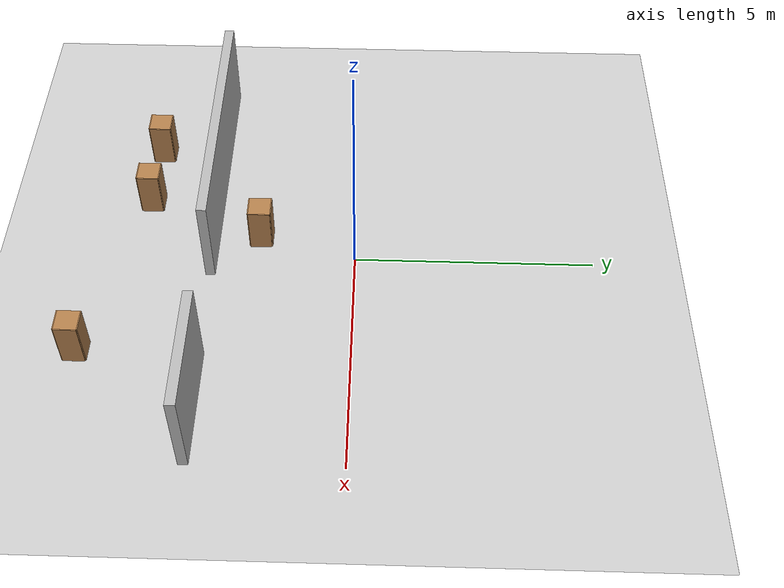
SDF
<sdf version="1.6">
 <world name="default">
  <model name="ground_plane">
   <static>1</static>
   <link name="link">
    <collision name="collision">
     <geometry><plane><normal>0 0 1</normal><size>100 100</size></plane></geometry>
     <surface><friction><ode><mu>100</mu><mu2>50</mu2></ode></friction></surface>
    </collision>
    <visual name="visual">
     <cast_shadows>0</cast_shadows>
     <geometry><plane><normal>0 0 1</normal><size>100 100</size></plane></geometry>
     <material>
      <script><uri>file://media/materials/scripts/gazebo.material</uri><name>Gazebo/Grey</name></script>
     </material>
    </visual>
    <velocity_decay><linear>0</linear><angular>0</angular></velocity_decay>
   </link>
  </model>
  <model name="wall_5_model">
   <pose>-2.25 -3 1 0 -0 0</pose>
   <static>1</static>
   <link name="wall_5_body">
    <inertial>
     <mass>1</mass>
     <inertia><ixx>1</ixx><ixy>0</ixy><ixz>0</ixz><iyy>1</iyy><iyz>0</iyz><izz>1</izz></inertia>
    </inertial>
    <collision name="collision"><geometry><box><size>5.5 0.2 2</size></box></geometry></collision>
    <visual name="visual"><geometry><box><size>5.5 0.2 2</size></box></geometry></visual>
    <velocity_decay><linear>0</linear><angular>0</angular></velocity_decay>
   </link>
  </model>
  <model name="wall_6_model">
   <pose>3.75 -3 1 0 -0 0</pose>
   <static>1</static>
   <link name="wall_6_body">
    <inertial>
     <mass>1</mass>
     <inertia><ixx>1</ixx><ixy>0</ixy><ixz>0</ixz><iyy>1</iyy><iyz>0</iyz><izz>1</izz></inertia>
    </inertial>
    <collision name="collision"><geometry><box><size>2.5 0.2 2</size></box></geometry></collision>
    <visual name="visual"><geometry><box><size>2.5 0.2 2</size></box></geometry></visual>
    <velocity_decay><linear>0</linear><angular>0</angular></velocity_decay>
   </link>
  </model>
  <model name="cabinet_0">
   <static>1</static>
   <link name="cabinet_bottom_plate">
    <inertial>
     <pose>0 0 -1 0 -0 0</pose>
     <inertia><ixx>2.05</ixx><ixy>0</ixy><ixz>0</ixz><iyy>2.05</iyy><iyz>0</iyz><izz>2.05</izz></inertia>
     <mass>25</mass>
    </inertial>
    <collision name="cabinet_bottom_plate_geom">
     <pose>0 0 0.01 0 -0 0</pose>
     <geometry><box><size>0.45 0.45 0.02</size></box></geometry>
    </collision>
    <visual name="cabinet_bottom_plate_geom_visual">
     <pose>0 0 0.01 0 -0 0</pose>
     <geometry><box><size>0.45 0.45 0.02</size></box></geometry>
     <material>
      <script><uri>file://media/materials/scripts/gazebo.material</uri><name>Gazebo/Wood</name></script>
     </material>
    </visual>
    <collision name="cabinet_bottom_plate_geom_cabinet_back_plate">
     <pose>0.235 0 0.51 0 -0 0</pose>
     <geometry><box><size>0.02 0.45 1.02</size></box></geometry>
    </collision>
    <visual name="cabinet_bottom_plate_geom_cabinet_back_plate_visual">
     <pose>0.235 0 0.51 0 -0 0</pose>
     <geometry><box><size>0.02 0.45 1.02</size></box></geometry>
     <material>
      <script><uri>file://media/materials/scripts/gazebo.material</uri><name>Gazebo/Wood</name></script>
     </material>
    </visual>
    <collision name="cabinet_bottom_plate_geom_cabinet_left_plate">
     <pose>0 0.235 0.51 0 -0 0</pose>
     <geometry><box><size>0.45 0.02 1.02</size></box></geometry>
    </collision>
    <visual name="cabinet_bottom_plate_geom_cabinet_left_plate_visual">
     <pose>0 0.235 0.51 0 -0 0</pose>
     <geometry><box><size>0.45 0.02 1.02</size></box></geometry>
     <material>
      <script><uri>file://media/materials/scripts/gazebo.material</uri><name>Gazebo/Wood</name></script>
     </material>
    </visual>
    <collision name="cabinet_bottom_plate_geom_cabinet_middle_plate">
     <pose>0 0 0.51 0 -0 0</pose>
     <geometry><box><size>0.45 0.45 0.02</size></box></geometry>
    </collision>
    <visual name="cabinet_bottom_plate_geom_cabinet_middle_plate_visual">
     <pose>0 0 0.51 0 -0 0</pose>
     <geometry><box><size>0.45 0.45 0.02</size></box></geometry>
     <material>
      <script><uri>file://media/materials/scripts/gazebo.material</uri><name>Gazebo/Wood</name></script>
     </material>
    </visual>
    <collision name="cabinet_bottom_plate_geom_cabinet_right_plate">
     <pose>0 -0.235 0.51 0 -0 0</pose>
     <geometry><box><size>0.45 0.02 1.02</size></box></geometry>
    </collision>
    <visual name="cabinet_bottom_plate_geom_cabinet_right_plate_visual">
     <pose>0 -0.235 0.51 0 -0 0</pose>
     <geometry><box><size>0.45 0.02 1.02</size></box></geometry>
     <material>
      <script><uri>file://media/materials/scripts/gazebo.material</uri><name>Gazebo/Wood</name></script>
     </material>
    </visual>
    <collision name="cabinet_bottom_plate_geom_cabinet_top_plate">
     <pose>0 0 1.01 0 -0 0</pose>
     <geometry><box><size>0.45 0.45 0.02</size></box></geometry>
    </collision>
    <visual name="cabinet_bottom_plate_geom_cabinet_top_plate_visual">
     <pose>0 0 1.01 0 -0 0</pose>
     <geometry><box><size>0.45 0.45 0.02</size></box></geometry>
     <material>
      <script><uri>file://media/materials/scripts/gazebo.material</uri><name>Gazebo/Wood</name></script>
     </material>
    </visual>
    <velocity_decay><linear>0</linear><angular>0</angular></velocity_decay>
   </link>
   <pose>2.51573 -5.43949 0 0 -0 0</pose>
  </model>
  <model name="cabinet_1">
   <static>1</static>
   <link name="cabinet_bottom_plate">
    <inertial>
     <pose>0 0 -1 0 -0 0</pose>
     <inertia><ixx>2.05</ixx><ixy>0</ixy><ixz>0</ixz><iyy>2.05</iyy><iyz>0</iyz><izz>2.05</izz></inertia>
     <mass>25</mass>
    </inertial>
    <collision name="cabinet_bottom_plate_geom">
     <pose>0 0 0.01 0 -0 0</pose>
     <geometry><box><size>0.45 0.45 0.02</size></box></geometry>
    </collision>
    <visual name="cabinet_bottom_plate_geom_visual">
     <pose>0 0 0.01 0 -0 0</pose>
     <geometry><box><size>0.45 0.45 0.02</size></box></geometry>
     <material>
      <script><uri>file://media/materials/scripts/gazebo.material</uri><name>Gazebo/Wood</name></script>
     </material>
    </visual>
    <collision name="cabinet_bottom_plate_geom_cabinet_back_plate">
     <pose>0.235 0 0.51 0 -0 0</pose>
     <geometry><box><size>0.02 0.45 1.02</size></box></geometry>
    </collision>
    <visual name="cabinet_bottom_plate_geom_cabinet_back_plate_visual">
     <pose>0.235 0 0.51 0 -0 0</pose>
     <geometry><box><size>0.02 0.45 1.02</size></box></geometry>
     <material>
      <script><uri>file://media/materials/scripts/gazebo.material</uri><name>Gazebo/Wood</name></script>
     </material>
    </visual>
    <collision name="cabinet_bottom_plate_geom_cabinet_left_plate">
     <pose>0 0.235 0.51 0 -0 0</pose>
     <geometry><box><size>0.45 0.02 1.02</size></box></geometry>
    </collision>
    <visual name="cabinet_bottom_plate_geom_cabinet_left_plate_visual">
     <pose>0 0.235 0.51 0 -0 0</pose>
     <geometry><box><size>0.45 0.02 1.02</size></box></geometry>
     <material>
      <script><uri>file://media/materials/scripts/gazebo.material</uri><name>Gazebo/Wood</name></script>
     </material>
    </visual>
    <collision name="cabinet_bottom_plate_geom_cabinet_middle_plate">
     <pose>0 0 0.51 0 -0 0</pose>
     <geometry><box><size>0.45 0.45 0.02</size></box></geometry>
    </collision>
    <visual name="cabinet_bottom_plate_geom_cabinet_middle_plate_visual">
     <pose>0 0 0.51 0 -0 0</pose>
     <geometry><box><size>0.45 0.45 0.02</size></box></geometry>
     <material>
      <script><uri>file://media/materials/scripts/gazebo.material</uri><name>Gazebo/Wood</name></script>
     </material>
    </visual>
    <collision name="cabinet_bottom_plate_geom_cabinet_right_plate">
     <pose>0 -0.235 0.51 0 -0 0</pose>
     <geometry><box><size>0.45 0.02 1.02</size></box></geometry>
    </collision>
    <visual name="cabinet_bottom_plate_geom_cabinet_right_plate_visual">
     <pose>0 -0.235 0.51 0 -0 0</pose>
     <geometry><box><size>0.45 0.02 1.02</size></box></geometry>
     <material>
      <script><uri>file://media/materials/scripts/gazebo.material</uri><name>Gazebo/Wood</name></script>
     </material>
    </visual>
    <collision name="cabinet_bottom_plate_geom_cabinet_top_plate">
     <pose>0 0 1.01 0 -0 0</pose>
     <geometry><box><size>0.45 0.45 0.02</size></box></geometry>
    </collision>
    <visual name="cabinet_bottom_plate_geom_cabinet_top_plate_visual">
     <pose>0 0 1.01 0 -0 0</pose>
     <geometry><box><size>0.45 0.45 0.02</size></box></geometry>
     <material>
      <script><uri>file://media/materials/scripts/gazebo.material</uri><name>Gazebo/Wood</name></script>
     </material>
    </visual>
    <velocity_decay><linear>0</linear><angular>0</angular></velocity_decay>
   </link>
   <pose>-3 -4.40005 0 0 -0 0</pose>
  </model>
  <model name="cabinet_2">
   <static>1</static>
   <link name="cabinet_bottom_plate">
    <inertial>
     <pose>0 0 -1 0 -0 0</pose>
     <inertia><ixx>2.05</ixx><ixy>0</ixy><ixz>0</ixz><iyy>2.05</iyy><iyz>0</iyz><izz>2.05</izz></inertia>
     <mass>25</mass>
    </inertial>
    <collision name="cabinet_bottom_plate_geom">
     <pose>0 0 0.01 0 -0 0</pose>
     <geometry><box><size>0.45 0.45 0.02</size></box></geometry>
    </collision>
    <visual name="cabinet_bottom_plate_geom_visual">
     <pose>0 0 0.01 0 -0 0</pose>
     <geometry><box><size>0.45 0.45 0.02</size></box></geometry>
     <material>
      <script><uri>file://media/materials/scripts/gazebo.material</uri><name>Gazebo/Wood</name></script>
     </material>
    </visual>
    <collision name="cabinet_bottom_plate_geom_cabinet_back_plate">
     <pose>0.235 0 0.51 0 -0 0</pose>
     <geometry><box><size>0.02 0.45 1.02</size></box></geometry>
    </collision>
    <visual name="cabinet_bottom_plate_geom_cabinet_back_plate_visual">
     <pose>0.235 0 0.51 0 -0 0</pose>
     <geometry><box><size>0.02 0.45 1.02</size></box></geometry>
     <material>
      <script><uri>file://media/materials/scripts/gazebo.material</uri><name>Gazebo/Wood</name></script>
     </material>
    </visual>
    <collision name="cabinet_bottom_plate_geom_cabinet_left_plate">
     <pose>0 0.235 0.51 0 -0 0</pose>
     <geometry><box><size>0.45 0.02 1.02</size></box></geometry>
    </collision>
    <visual name="cabinet_bottom_plate_geom_cabinet_left_plate_visual">
     <pose>0 0.235 0.51 0 -0 0</pose>
     <geometry><box><size>0.45 0.02 1.02</size></box></geometry>
     <material>
      <script><uri>file://media/materials/scripts/gazebo.material</uri><name>Gazebo/Wood</name></script>
     </material>
    </visual>
    <collision name="cabinet_bottom_plate_geom_cabinet_middle_plate">
     <pose>0 0 0.51 0 -0 0</pose>
     <geometry><box><size>0.45 0.45 0.02</size></box></geometry>
    </collision>
    <visual name="cabinet_bottom_plate_geom_cabinet_middle_plate_visual">
     <pose>0 0 0.51 0 -0 0</pose>
     <geometry><box><size>0.45 0.45 0.02</size></box></geometry>
     <material>
      <script><uri>file://media/materials/scripts/gazebo.material</uri><name>Gazebo/Wood</name></script>
     </material>
    </visual>
    <collision name="cabinet_bottom_plate_geom_cabinet_right_plate">
     <pose>0 -0.235 0.51 0 -0 0</pose>
     <geometry><box><size>0.45 0.02 1.02</size></box></geometry>
    </collision>
    <visual name="cabinet_bottom_plate_geom_cabinet_right_plate_visual">
     <pose>0 -0.235 0.51 0 -0 0</pose>
     <geometry><box><size>0.45 0.02 1.02</size></box></geometry>
     <material>
      <script><uri>file://media/materials/scripts/gazebo.material</uri><name>Gazebo/Wood</name></script>
     </material>
    </visual>
    <collision name="cabinet_bottom_plate_geom_cabinet_top_plate">
     <pose>0 0 1.01 0 -0 0</pose>
     <geometry><box><size>0.45 0.45 0.02</size></box></geometry>
    </collision>
    <visual name="cabinet_bottom_plate_geom_cabinet_top_plate_visual">
     <pose>0 0 1.01 0 -0 0</pose>
     <geometry><box><size>0.45 0.45 0.02</size></box></geometry>
     <material>
      <script><uri>file://media/materials/scripts/gazebo.material</uri><name>Gazebo/Wood</name></script>
     </material>
    </visual>
    <velocity_decay><linear>0</linear><angular>0</angular></velocity_decay>
   </link>
   <pose>-1.49183 -4.45622 0 0 -0 0</pose>
  </model>
  <model name="cabinet_4">
   <static>1</static>
   <link name="cabinet_bottom_plate">
    <inertial>
     <pose>0 0 -1 0 -0 0</pose>
     <inertia><ixx>2.05</ixx><ixy>0</ixy><ixz>0</ixz><iyy>2.05</iyy><iyz>0</iyz><izz>2.05</izz></inertia>
     <mass>25</mass>
    </inertial>
    <collision name="cabinet_bottom_plate_geom">
     <pose>0 0 0.01 0 -0 0</pose>
     <geometry><box><size>0.45 0.45 0.02</size></box></geometry>
    </collision>
    <visual name="cabinet_bottom_plate_geom_visual">
     <pose>0 0 0.01 0 -0 0</pose>
     <geometry><box><size>0.45 0.45 0.02</size></box></geometry>
     <material>
      <script><uri>file://media/materials/scripts/gazebo.material</uri><name>Gazebo/Wood</name></script>
     </material>
    </visual>
    <collision name="cabinet_bottom_plate_geom_cabinet_back_plate">
     <pose>0.235 0 0.51 0 -0 0</pose>
     <geometry><box><size>0.02 0.45 1.02</size></box></geometry>
    </collision>
    <visual name="cabinet_bottom_plate_geom_cabinet_back_plate_visual">
     <pose>0.235 0 0.51 0 -0 0</pose>
     <geometry><box><size>0.02 0.45 1.02</size></box></geometry>
     <material>
      <script><uri>file://media/materials/scripts/gazebo.material</uri><name>Gazebo/Wood</name></script>
     </material>
    </visual>
    <collision name="cabinet_bottom_plate_geom_cabinet_left_plate">
     <pose>0 0.235 0.51 0 -0 0</pose>
     <geometry><box><size>0.45 0.02 1.02</size></box></geometry>
    </collision>
    <visual name="cabinet_bottom_plate_geom_cabinet_left_plate_visual">
     <pose>0 0.235 0.51 0 -0 0</pose>
     <geometry><box><size>0.45 0.02 1.02</size></box></geometry>
     <material>
      <script><uri>file://media/materials/scripts/gazebo.material</uri><name>Gazebo/Wood</name></script>
     </material>
    </visual>
    <collision name="cabinet_bottom_plate_geom_cabinet_middle_plate">
     <pose>0 0 0.51 0 -0 0</pose>
     <geometry><box><size>0.45 0.45 0.02</size></box></geometry>
    </collision>
    <visual name="cabinet_bottom_plate_geom_cabinet_middle_plate_visual">
     <pose>0 0 0.51 0 -0 0</pose>
     <geometry><box><size>0.45 0.45 0.02</size></box></geometry>
     <material>
      <script><uri>file://media/materials/scripts/gazebo.material</uri><name>Gazebo/Wood</name></script>
     </material>
    </visual>
    <collision name="cabinet_bottom_plate_geom_cabinet_right_plate">
     <pose>0 -0.235 0.51 0 -0 0</pose>
     <geometry><box><size>0.45 0.02 1.02</size></box></geometry>
    </collision>
    <visual name="cabinet_bottom_plate_geom_cabinet_right_plate_visual">
     <pose>0 -0.235 0.51 0 -0 0</pose>
     <geometry><box><size>0.45 0.02 1.02</size></box></geometry>
     <material>
      <script><uri>file://media/materials/scripts/gazebo.material</uri><name>Gazebo/Wood</name></script>
     </material>
    </visual>
    <collision name="cabinet_bottom_plate_geom_cabinet_top_plate">
     <pose>0 0 1.01 0 -0 0</pose>
     <geometry><box><size>0.45 0.45 0.02</size></box></geometry>
    </collision>
    <visual name="cabinet_bottom_plate_geom_cabinet_top_plate_visual">
     <pose>0 0 1.01 0 -0 0</pose>
     <geometry><box><size>0.45 0.45 0.02</size></box></geometry>
     <material>
      <script><uri>file://media/materials/scripts/gazebo.material</uri><name>Gazebo/Wood</name></script>
     </material>
    </visual>
    <velocity_decay><linear>0</linear><angular>0</angular></velocity_decay>
   </link>
   <pose>-0.537023 -2 0 0 -0 0</pose>
  </model>
 </world>
</sdf>
